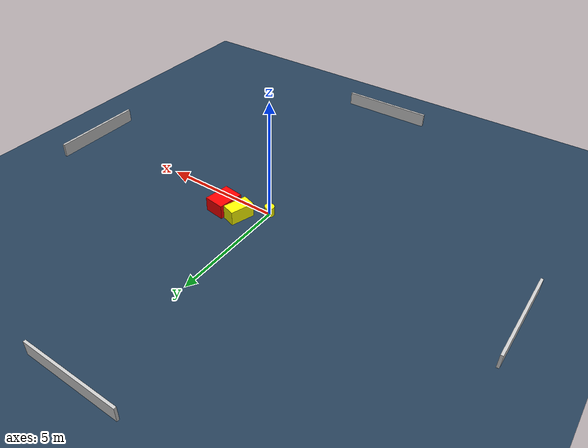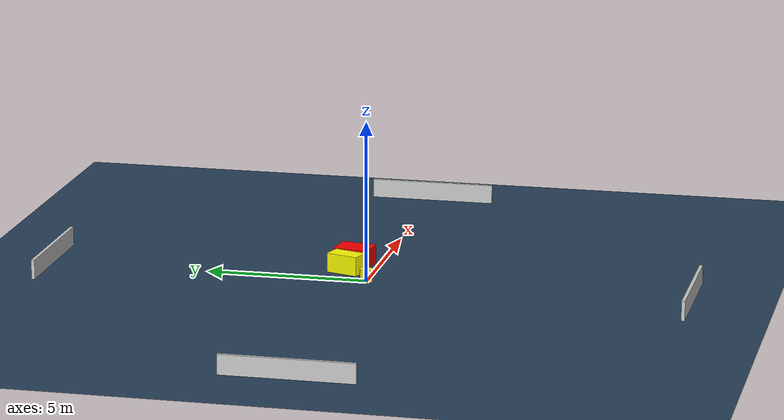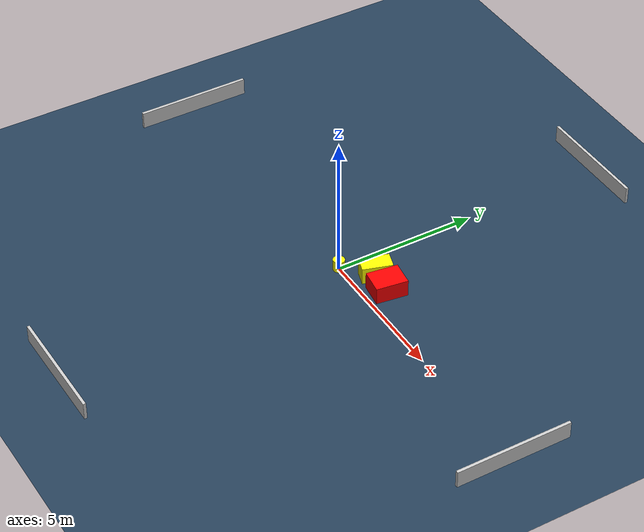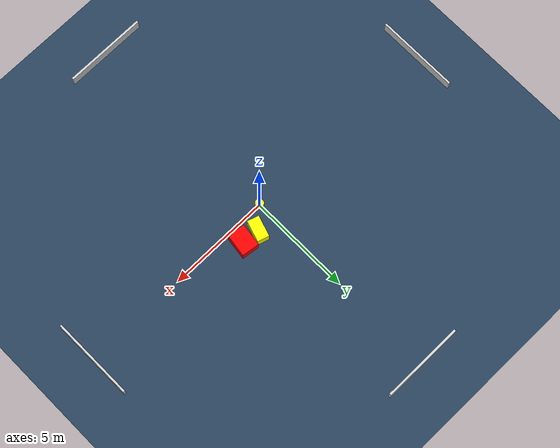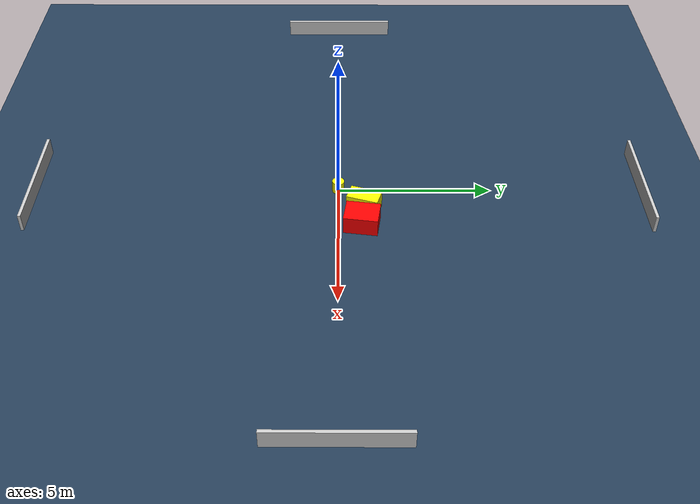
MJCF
<?xml version="1.0" ?>
<mujoco model="generated_environment">
  <option timestep="0.01" integrator="RK4" cone="elliptic"/>
  <default>
    <geom density="1"/>
  </default>
  <asset>
    <texture builtin="gradient" height="3072" name="skybox" rgb1="0.3 0.5 0.7" rgb2="0 0 0" type="skybox" width="512"/>
    <texture builtin="checker" height="300" name="groundplane" rgb1="0.2 0.3 0.4" rgb2="0.1 0.2 0.3" type="2d" width="300"/>
    <material name="groundplane" reflectance="0.2" texrepeat="5 5" texture="groundplane"/>
  </asset>
  <worldbody>
    <light dir="0 0 -1" directional="true" pos="0 0 1.5"/>
    <geom condim="3" friction="0.5 0.005 0.001" material="groundplane" name="floor" pos="0 0 0" size="0 0 0.05" type="plane"/>
    <body name="walls">
      <geom name="wall_1" condim="4" pos="-10.0 0.0 0.3" rgba="0.800000011920929 0.800000011920929 0.800000011920929 1.0" size="0.05 2.0 0.3" type="box"/>
      <geom name="wall_2" condim="4" pos="10.0 0.0 0.3" rgba="0.800000011920929 0.800000011920929 0.800000011920929 1.0" size="0.05 2.0 0.3" type="box"/>
      <geom name="wall_3" condim="4" pos="0.0 -10.0 0.3" rgba="0.800000011920929 0.800000011920929 0.800000011920929 1.0" size="2.0 0.05 0.3" type="box"/>
      <geom name="wall_4" condim="4" pos="0.0 10.0 0.3" rgba="0.800000011920929 0.800000011920929 0.800000011920929 1.0" size="2.0 0.05 0.3" type="box"/>
    </body>
    <body name="robot">
      <joint name="joint_x" type="slide" pos="0 0 0" axis="1 0 0"/>
      <joint name="joint_y" type="slide" pos="0 0 0" axis="0 1 0"/>
      <geom name="robot" type="cylinder" pos="0.0 0.0 0.2" size="0.2 0.2 0.0" mass="5.0" friction="1.0 0.005 0.0001" condim="4" rgba="1.0 1.0 0.0 1.0"/>
    </body>
    <body name="obstacle_1_movable">
      <geom name="obstacle_1_movable" condim="4" pos="0.8995764313562603 0.8389716718883391 0.3" euler="0 0 162.39914575614986" friction="0.0 0.005 0.001" rgba="1.0 1.0 0.0 1.0" size="0.2873933901504923 0.5164713585725542 0.3" type="box" mass="0.1"/>
      <joint type="free"/>
    </body>
    <body name="obstacle_2_static">
      <geom name="obstacle_2_static" condim="4" pos="1.7244253017582079 0.7561079342561933 0.3" euler="0 0 172.05225859849403" friction="0.0 0.005 0.001" rgba="1.0 0.0 0.0 1.0" size="0.42721862435343994 0.5500349879627557 0.3" type="box"/>
    </body>
  </worldbody>
  <actuator>
    <motor name="actuator_x" joint="joint_x" gear="1" ctrlrange="-1 1"/>
    <motor name="actuator_y" joint="joint_y" gear="1" ctrlrange="-1 1"/>
  </actuator>
</mujoco>
